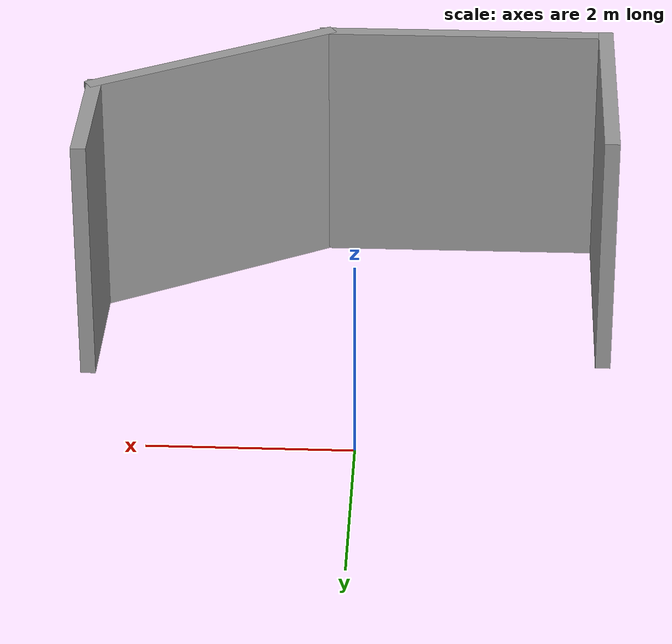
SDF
<?xml version='1.0'?>
<sdf version='1.7'>
  <model name='first_wall'>
    <pose>0.164559 -2.07123 0 0 -0 0</pose>
    <link name='Wall_0'>
      <collision name='Wall_0_Collision'>
        <geometry>
          <box>
            <size>2.5 0.15 2.5</size>
          </box>
        </geometry>
        <pose>0 0 1.25 0 -0 0</pose>
      </collision>
      <visual name='Wall_0_Visual'>
        <pose>0 0 1.25 0 -0 0</pose>
        <geometry>
          <box>
            <size>2.5 0.15 2.5</size>
          </box>
        </geometry>
        <material>
          <script>
            <uri>file://media/materials/scripts/gazebo.material</uri>
            <name>Gazebo/Grey</name>
          </script>
          <ambient>1 1 1 1</ambient>
        </material>
        <meta>
          <layer>0</layer>
        </meta>
      </visual>
      <pose>-2.56456 -0.793774 0 0 -0 -1.5708</pose>
    </link>
    <link name='Wall_1'>
      <collision name='Wall_1_Collision'>
        <geometry>
          <box>
            <size>3 0.15 2.5</size>
          </box>
        </geometry>
        <pose>0 0 1.25 0 -0 0</pose>
      </collision>
      <visual name='Wall_1_Visual'>
        <pose>0 0 1.25 0 -0 0</pose>
        <geometry>
          <box>
            <size>3 0.15 2.5</size>
          </box>
        </geometry>
        <material>
          <script>
            <uri>file://media/materials/scripts/gazebo.material</uri>
            <name>Gazebo/Grey</name>
          </script>
          <ambient>1 1 1 1</ambient>
        </material>
        <meta>
          <layer>0</layer>
        </meta>
      </visual>
      <pose>-1.13956 -1.96877 0 0 -0 0</pose>
    </link>
    <link name='Wall_2'>
      <collision name='Wall_2_Collision'>
        <geometry>
          <box>
            <size>2.75 0.15 2.5</size>
          </box>
        </geometry>
        <pose>0 0 1.25 0 -0 0</pose>
      </collision>
      <visual name='Wall_2_Visual'>
        <pose>0 0 1.25 0 -0 0</pose>
        <geometry>
          <box>
            <size>2.75 0.15 2.5</size>
          </box>
        </geometry>
        <material>
          <script>
            <uri>file://media/materials/scripts/gazebo.material</uri>
            <name>Gazebo/Grey</name>
          </script>
          <ambient>1 1 1 1</ambient>
        </material>
        <meta>
          <layer>0</layer>
        </meta>
      </visual>
      <pose>1.41127 -1.31877 0 0 -0 0.523599</pose>
    </link>
    <link name='Wall_3'>
      <collision name='Wall_3_Collision'>
        <geometry>
          <box>
            <size>1.5 0.15 2.5</size>
          </box>
        </geometry>
        <pose>0 0 1.25 0 -0 0</pose>
      </collision>
      <visual name='Wall_3_Visual'>
        <pose>0 0 1.25 0 -0 0</pose>
        <geometry>
          <box>
            <size>1.5 0.15 2.5</size>
          </box>
        </geometry>
        <material>
          <script>
            <uri>file://media/materials/scripts/gazebo.material</uri>
            <name>Gazebo/Grey</name>
          </script>
          <ambient>1 1 1 1</ambient>
        </material>
        <meta>
          <layer>0</layer>
        </meta>
      </visual>
      <pose>2.53711 0.006226 0 0 -0 1.5708</pose>
    </link>
    <static>1</static>
  </model>
</sdf>
